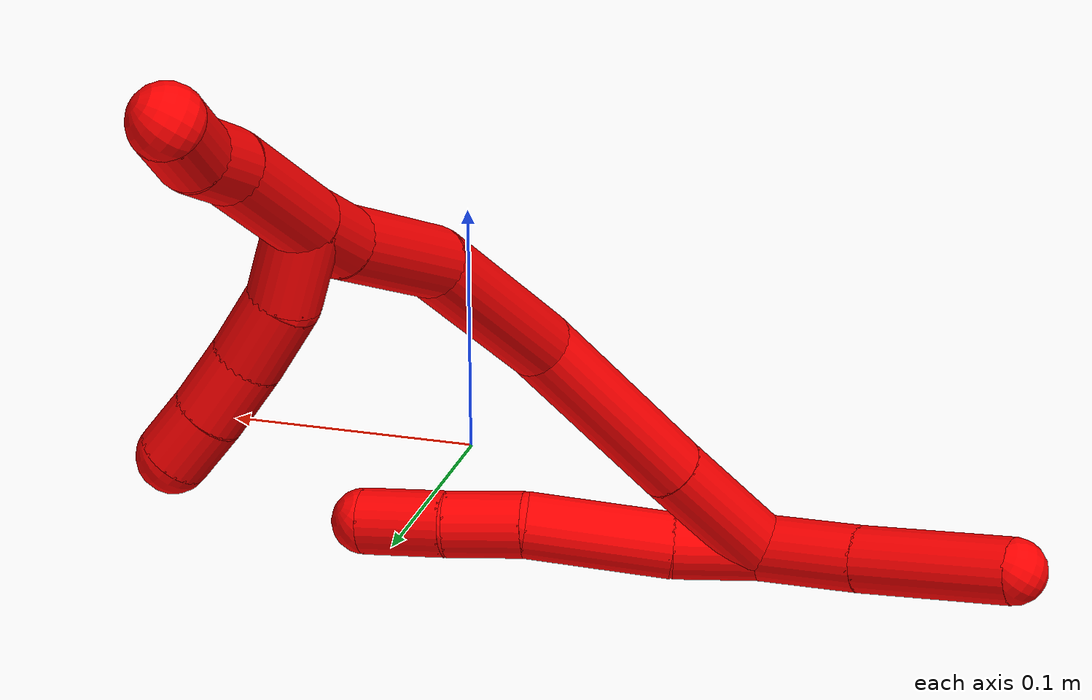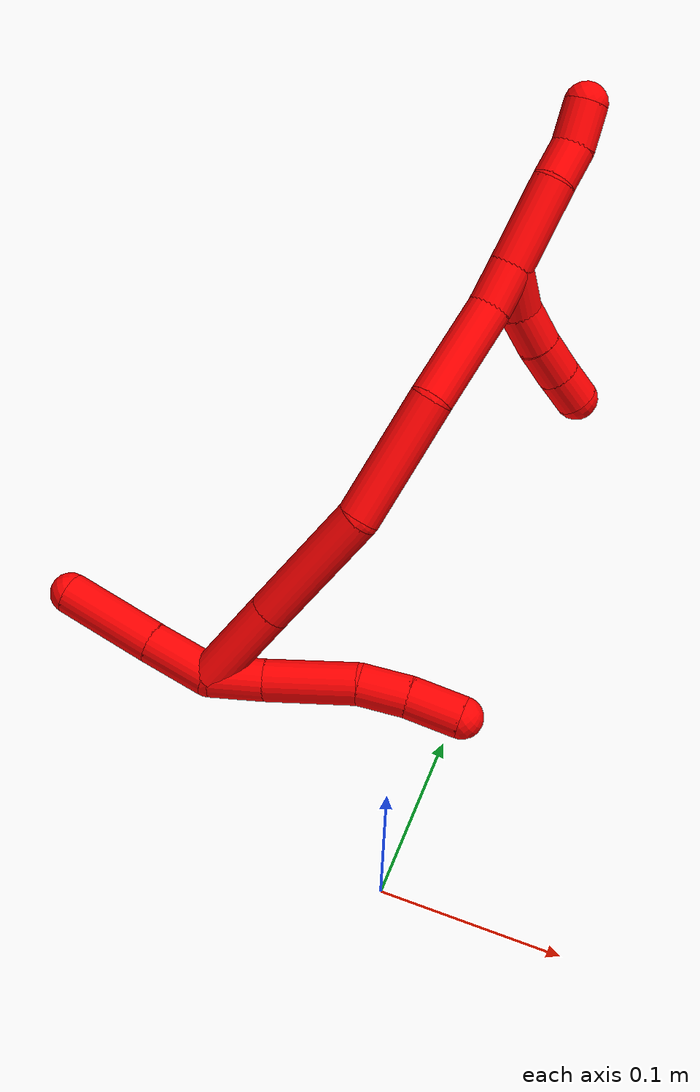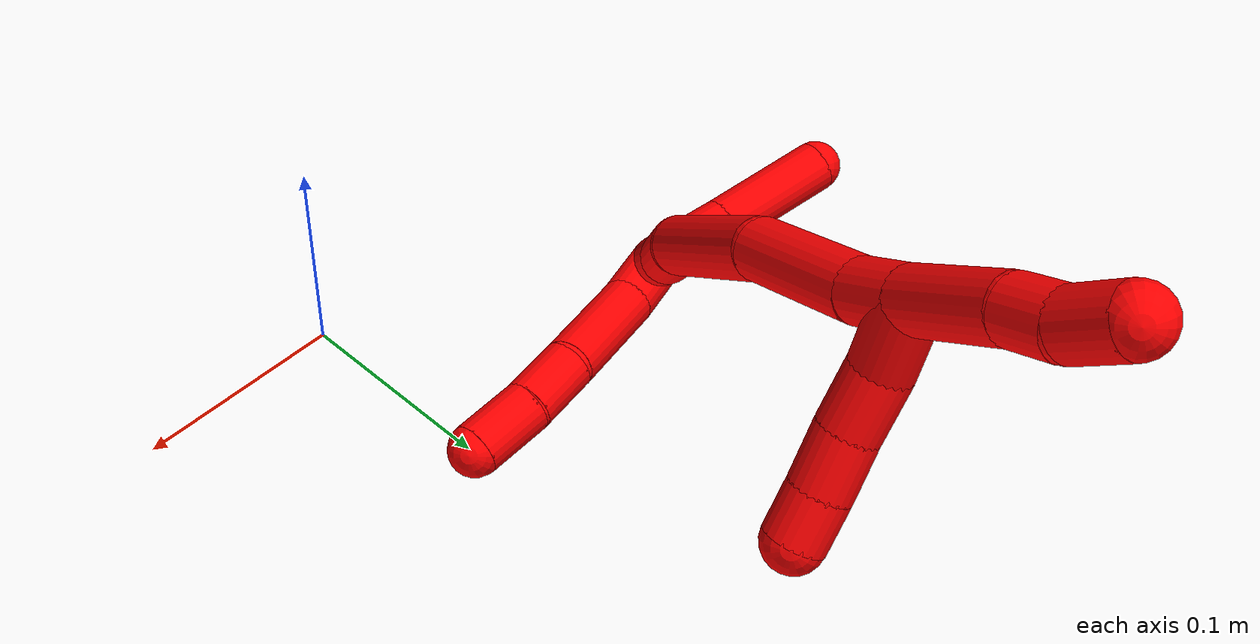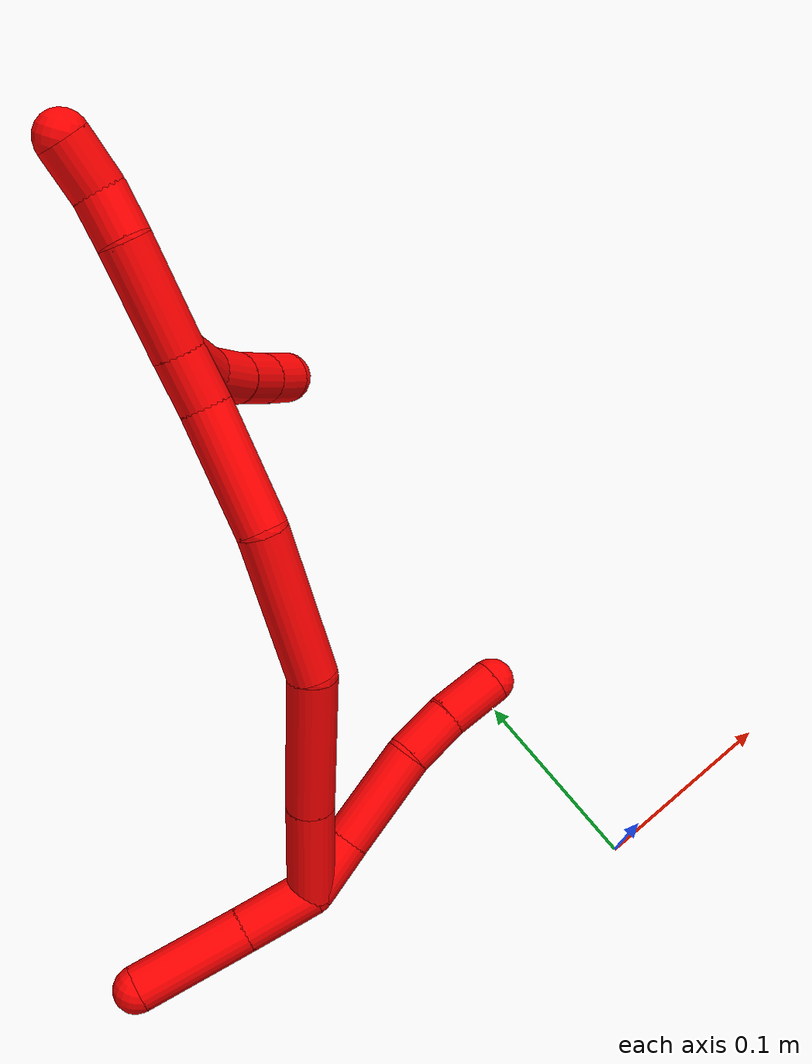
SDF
<sdf version="1.7">
 <world name="default">
  <model name="2">
   <static>0</static>
   <link name="2">
    <collision name="collision-cylinder-e_1_2_8">
     <pose>0.004877 0.008469 0.01305 -0.575646 0.30378 -0.090568</pose>
     <geometry><cylinder><radius>0.0125</radius><length>0.032607</length></cylinder></geometry>
     <surface>
      <friction><ode><mu>1.16</mu><mu2>1.16</mu2><slip1>0</slip1><slip2>0</slip2></ode></friction>
      <contact><ode><kp>1e+06</kp><kd>1</kd><max_vel>0</max_vel><min_depth>0.001</min_depth></ode></contact>
     </surface>
    </collision>
    <visual name="visual-cylinder-e_1_2_8">
     <pose>0.004877 0.008469 0.01305 -0.575646 0.30378 -0.090568</pose>
     <geometry><cylinder><radius>0.0125</radius><length>0.032607</length></cylinder></geometry>
     <material><ambient>1 0 0 1</ambient></material>
    </visual>
    <collision name="collision-cylinder-e_2_8_9">
     <pose>0.018644 0.028349 0.049698 -0.450404 0.326997 -0.07555</pose>
     <geometry><cylinder><radius>0.0125</radius><length>0.055357</length></cylinder></geometry>
     <surface>
      <friction><ode><mu>1.16</mu><mu2>1.16</mu2><slip1>0</slip1><slip2>0</slip2></ode></friction>
      <contact><ode><kp>1e+06</kp><kd>1</kd><max_vel>0</max_vel><min_depth>0.001</min_depth></ode></contact>
     </surface>
    </collision>
    <visual name="visual-cylinder-e_2_8_9">
     <pose>0.018644 0.028349 0.049698 -0.450404 0.326997 -0.07555</pose>
     <geometry><cylinder><radius>0.0125</radius><length>0.055357</length></cylinder></geometry>
     <material><ambient>1 0 0 1</ambient></material>
    </visual>
    <collision name="collision-cylinder-e_3_9_10">
     <pose>0.034131 0.047883 0.083806 -0.658023 0.460907 -0.159868</pose>
     <geometry><cylinder><radius>0.0125</radius><length>0.029663</length></cylinder></geometry>
     <surface>
      <friction><ode><mu>1.16</mu><mu2>1.16</mu2><slip1>0</slip1><slip2>0</slip2></ode></friction>
      <contact><ode><kp>1e+06</kp><kd>1</kd><max_vel>0</max_vel><min_depth>0.001</min_depth></ode></contact>
     </surface>
    </collision>
    <visual name="visual-cylinder-e_3_9_10">
     <pose>0.034131 0.047883 0.083806 -0.658023 0.460907 -0.159868</pose>
     <geometry><cylinder><radius>0.0125</radius><length>0.029663</length></cylinder></geometry>
     <material><ambient>1 0 0 1</ambient></material>
    </visual>
    <collision name="collision-cylinder-e_4_10_6">
     <pose>0.049634 0.064508 0.104823 -0.680216 0.582666 -0.211428</pose>
     <geometry><cylinder><radius>0.0125</radius><length>0.032372</length></cylinder></geometry>
     <surface>
      <friction><ode><mu>1.16</mu><mu2>1.16</mu2><slip1>0</slip1><slip2>0</slip2></ode></friction>
      <contact><ode><kp>1e+06</kp><kd>1</kd><max_vel>0</max_vel><min_depth>0.001</min_depth></ode></contact>
     </surface>
    </collision>
    <visual name="visual-cylinder-e_4_10_6">
     <pose>0.049634 0.064508 0.104823 -0.680216 0.582666 -0.211428</pose>
     <geometry><cylinder><radius>0.0125</radius><length>0.032372</length></cylinder></geometry>
     <material><ambient>1 0 0 1</ambient></material>
    </visual>
    <collision name="collision-cylinder-e_1_2_11">
     <pose>-0.013611 -0.009157 -0.011388 2.46438 -0.749938 -1.68177</pose>
     <geometry><cylinder><radius>0.0125</radius><length>0.03994</length></cylinder></geometry>
     <surface>
      <friction><ode><mu>1.16</mu><mu2>1.16</mu2><slip1>0</slip1><slip2>0</slip2></ode></friction>
      <contact><ode><kp>1e+06</kp><kd>1</kd><max_vel>0</max_vel><min_depth>0.001</min_depth></ode></contact>
     </surface>
    </collision>
    <visual name="visual-cylinder-e_1_2_11">
     <pose>-0.013611 -0.009157 -0.011388 2.46438 -0.749938 -1.68177</pose>
     <geometry><cylinder><radius>0.0125</radius><length>0.03994</length></cylinder></geometry>
     <material><ambient>1 0 0 1</ambient></material>
    </visual>
    <collision name="collision-cylinder-e_2_11_5">
     <pose>-0.047734 -0.032964 -0.039099 2.41012 -0.751889 -1.60102</pose>
     <geometry><cylinder><radius>0.0125</radius><length>0.06006</length></cylinder></geometry>
     <surface>
      <friction><ode><mu>1.16</mu><mu2>1.16</mu2><slip1>0</slip1><slip2>0</slip2></ode></friction>
      <contact><ode><kp>1e+06</kp><kd>1</kd><max_vel>0</max_vel><min_depth>0.001</min_depth></ode></contact>
     </surface>
    </collision>
    <visual name="visual-cylinder-e_2_11_5">
     <pose>-0.047734 -0.032964 -0.039099 2.41012 -0.751889 -1.60102</pose>
     <geometry><cylinder><radius>0.0125</radius><length>0.06006</length></cylinder></geometry>
     <material><ambient>1 0 0 1</ambient></material>
    </visual>
    <collision name="collision-cylinder-e_1_2_12">
     <pose>-0.005544 -0.005578 0.027389 0.200919 -0.195813 -0.0198</pose>
     <geometry><cylinder><radius>0.0125</radius><length>0.056991</length></cylinder></geometry>
     <surface>
      <friction><ode><mu>1.16</mu><mu2>1.16</mu2><slip1>0</slip1><slip2>0</slip2></ode></friction>
      <contact><ode><kp>1e+06</kp><kd>1</kd><max_vel>0</max_vel><min_depth>0.001</min_depth></ode></contact>
     </surface>
    </collision>
    <visual name="visual-cylinder-e_1_2_12">
     <pose>-0.005544 -0.005578 0.027389 0.200919 -0.195813 -0.0198</pose>
     <geometry><cylinder><radius>0.0125</radius><length>0.056991</length></cylinder></geometry>
     <material><ambient>1 0 0 1</ambient></material>
    </visual>
    <collision name="collision-cylinder-e_2_12_13">
     <pose>-0.01786 -0.019736 0.093069 0.220415 -0.170883 -0.018955</pose>
     <geometry><cylinder><radius>0.0125</radius><length>0.079641</length></cylinder></geometry>
     <surface>
      <friction><ode><mu>1.16</mu><mu2>1.16</mu2><slip1>0</slip1><slip2>0</slip2></ode></friction>
      <contact><ode><kp>1e+06</kp><kd>1</kd><max_vel>0</max_vel><min_depth>0.001</min_depth></ode></contact>
     </surface>
    </collision>
    <visual name="visual-cylinder-e_2_12_13">
     <pose>-0.01786 -0.019736 0.093069 0.220415 -0.170883 -0.018955</pose>
     <geometry><cylinder><radius>0.0125</radius><length>0.079641</length></cylinder></geometry>
     <material><ambient>1 0 0 1</ambient></material>
    </visual>
    <collision name="collision-cylinder-e_3_13_14">
     <pose>-0.043353 -0.034004 0.164353 0.17076 -0.509861 -0.044601</pose>
     <geometry><cylinder><radius>0.0125</radius><length>0.076716</length></cylinder></geometry>
     <surface>
      <friction><ode><mu>1.16</mu><mu2>1.16</mu2><slip1>0</slip1><slip2>0</slip2></ode></friction>
      <contact><ode><kp>1e+06</kp><kd>1</kd><max_vel>0</max_vel><min_depth>0.001</min_depth></ode></contact>
     </surface>
    </collision>
    <visual name="visual-cylinder-e_3_13_14">
     <pose>-0.043353 -0.034004 0.164353 0.17076 -0.509861 -0.044601</pose>
     <geometry><cylinder><radius>0.0125</radius><length>0.076716</length></cylinder></geometry>
     <material><ambient>1 0 0 1</ambient></material>
    </visual>
    <collision name="collision-cylinder-e_4_14_15">
     <pose>-0.08129 -0.037626 0.22058 -0.088752 -0.689086 0.031867</pose>
     <geometry><cylinder><radius>0.0125</radius><length>0.060445</length></cylinder></geometry>
     <surface>
      <friction><ode><mu>1.16</mu><mu2>1.16</mu2><slip1>0</slip1><slip2>0</slip2></ode></friction>
      <contact><ode><kp>1e+06</kp><kd>1</kd><max_vel>0</max_vel><min_depth>0.001</min_depth></ode></contact>
     </surface>
    </collision>
    <visual name="visual-cylinder-e_4_14_15">
     <pose>-0.08129 -0.037626 0.22058 -0.088752 -0.689086 0.031867</pose>
     <geometry><cylinder><radius>0.0125</radius><length>0.060445</length></cylinder></geometry>
     <material><ambient>1 0 0 1</ambient></material>
    </visual>
    <collision name="collision-cylinder-e_5_15_1">
     <pose>-0.108738 -0.036558 0.25396 0.098236 -0.679277 -0.034734</pose>
     <geometry><cylinder><radius>0.0125</radius><length>0.026206</length></cylinder></geometry>
     <surface>
      <friction><ode><mu>1.16</mu><mu2>1.16</mu2><slip1>0</slip1><slip2>0</slip2></ode></friction>
      <contact><ode><kp>1e+06</kp><kd>1</kd><max_vel>0</max_vel><min_depth>0.001</min_depth></ode></contact>
     </surface>
    </collision>
    <visual name="visual-cylinder-e_5_15_1">
     <pose>-0.108738 -0.036558 0.25396 0.098236 -0.679277 -0.034734</pose>
     <geometry><cylinder><radius>0.0125</radius><length>0.026206</length></cylinder></geometry>
     <material><ambient>1 0 0 1</ambient></material>
    </visual>
    <collision name="collision-cylinder-e_1_1_16">
     <pose>-0.132446 -0.041184 0.284924 0.172437 -0.632102 -0.056514</pose>
     <geometry><cylinder><radius>0.0125</radius><length>0.052386</length></cylinder></geometry>
     <surface>
      <friction><ode><mu>1.16</mu><mu2>1.16</mu2><slip1>0</slip1><slip2>0</slip2></ode></friction>
      <contact><ode><kp>1e+06</kp><kd>1</kd><max_vel>0</max_vel><min_depth>0.001</min_depth></ode></contact>
     </surface>
    </collision>
    <visual name="visual-cylinder-e_1_1_16">
     <pose>-0.132446 -0.041184 0.284924 0.172437 -0.632102 -0.056514</pose>
     <geometry><cylinder><radius>0.0125</radius><length>0.052386</length></cylinder></geometry>
     <material><ambient>1 0 0 1</ambient></material>
    </visual>
    <collision name="collision-cylinder-e_2_16_17">
     <pose>-0.155297 -0.044704 0.314084 -0.01277 -0.723981 0.004836</pose>
     <geometry><cylinder><radius>0.0125</radius><length>0.022269</length></cylinder></geometry>
     <surface>
      <friction><ode><mu>1.16</mu><mu2>1.16</mu2><slip1>0</slip1><slip2>0</slip2></ode></friction>
      <contact><ode><kp>1e+06</kp><kd>1</kd><max_vel>0</max_vel><min_depth>0.001</min_depth></ode></contact>
     </surface>
    </collision>
    <visual name="visual-cylinder-e_2_16_17">
     <pose>-0.155297 -0.044704 0.314084 -0.01277 -0.723981 0.004836</pose>
     <geometry><cylinder><radius>0.0125</radius><length>0.022269</length></cylinder></geometry>
     <material><ambient>1 0 0 1</ambient></material>
    </visual>
    <collision name="collision-cylinder-e_3_17_4">
     <pose>-0.171217 -0.047839 0.331204 0.353718 -0.739978 -0.138417</pose>
     <geometry><cylinder><radius>0.0125</radius><length>0.025345</length></cylinder></geometry>
     <surface>
      <friction><ode><mu>1.16</mu><mu2>1.16</mu2><slip1>0</slip1><slip2>0</slip2></ode></friction>
      <contact><ode><kp>1e+06</kp><kd>1</kd><max_vel>0</max_vel><min_depth>0.001</min_depth></ode></contact>
     </surface>
    </collision>
    <visual name="visual-cylinder-e_3_17_4">
     <pose>-0.171217 -0.047839 0.331204 0.353718 -0.739978 -0.138417</pose>
     <geometry><cylinder><radius>0.0125</radius><length>0.025345</length></cylinder></geometry>
     <material><ambient>1 0 0 1</ambient></material>
    </visual>
    <collision name="collision-cylinder-e_1_1_18">
     <pose>-0.113666 -0.024369 0.258642 -1.96348 0.227396 -0.33852</pose>
     <geometry><cylinder><radius>0.0125</radius><length>0.029307</length></cylinder></geometry>
     <surface>
      <friction><ode><mu>1.16</mu><mu2>1.16</mu2><slip1>0</slip1><slip2>0</slip2></ode></friction>
      <contact><ode><kp>1e+06</kp><kd>1</kd><max_vel>0</max_vel><min_depth>0.001</min_depth></ode></contact>
     </surface>
    </collision>
    <visual name="visual-cylinder-e_1_1_18">
     <pose>-0.113666 -0.024369 0.258642 -1.96348 0.227396 -0.33852</pose>
     <geometry><cylinder><radius>0.0125</radius><length>0.029307</length></cylinder></geometry>
     <material><ambient>1 0 0 1</ambient></material>
    </visual>
    <collision name="collision-cylinder-e_2_18_19">
     <pose>-0.105879 0.000717 0.251431 -1.7167 0.356922 -0.411731</pose>
     <geometry><cylinder><radius>0.0125</radius><length>0.025665</length></cylinder></geometry>
     <surface>
      <friction><ode><mu>1.16</mu><mu2>1.16</mu2><slip1>0</slip1><slip2>0</slip2></ode></friction>
      <contact><ode><kp>1e+06</kp><kd>1</kd><max_vel>0</max_vel><min_depth>0.001</min_depth></ode></contact>
     </surface>
    </collision>
    <visual name="visual-cylinder-e_2_18_19">
     <pose>-0.105879 0.000717 0.251431 -1.7167 0.356922 -0.411731</pose>
     <geometry><cylinder><radius>0.0125</radius><length>0.025665</length></cylinder></geometry>
     <material><ambient>1 0 0 1</ambient></material>
    </visual>
    <collision name="collision-cylinder-e_3_19_20">
     <pose>-0.097675 0.024092 0.248924 -1.63681 0.312849 -0.333832</pose>
     <geometry><cylinder><radius>0.0125</radius><length>0.024181</length></cylinder></geometry>
     <surface>
      <friction><ode><mu>1.16</mu><mu2>1.16</mu2><slip1>0</slip1><slip2>0</slip2></ode></friction>
      <contact><ode><kp>1e+06</kp><kd>1</kd><max_vel>0</max_vel><min_depth>0.001</min_depth></ode></contact>
     </surface>
    </collision>
    <visual name="visual-cylinder-e_3_19_20">
     <pose>-0.097675 0.024092 0.248924 -1.63681 0.312849 -0.333832</pose>
     <geometry><cylinder><radius>0.0125</radius><length>0.024181</length></cylinder></geometry>
     <material><ambient>1 0 0 1</ambient></material>
    </visual>
    <collision name="collision-cylinder-e_4_20_3">
     <pose>-0.090343 0.045347 0.248007 -1.58705 0.3537 -0.359372</pose>
     <geometry><cylinder><radius>0.0125</radius><length>0.020847</length></cylinder></geometry>
     <surface>
      <friction><ode><mu>1.16</mu><mu2>1.16</mu2><slip1>0</slip1><slip2>0</slip2></ode></friction>
      <contact><ode><kp>1e+06</kp><kd>1</kd><max_vel>0</max_vel><min_depth>0.001</min_depth></ode></contact>
     </surface>
    </collision>
    <visual name="visual-cylinder-e_4_20_3">
     <pose>-0.090343 0.045347 0.248007 -1.58705 0.3537 -0.359372</pose>
     <geometry><cylinder><radius>0.0125</radius><length>0.020847</length></cylinder></geometry>
     <material><ambient>1 0 0 1</ambient></material>
    </visual>
    <collision name="collision-sphere-3">
     <pose>-0.086733 0.055124 0.247848 0 -0 0</pose>
     <geometry><sphere><radius>0.0125</radius></sphere></geometry>
     <surface>
      <friction><ode><mu>1.16</mu><mu2>1.16</mu2><slip1>0</slip1><slip2>0</slip2></ode></friction>
      <contact><ode><kp>1e+06</kp><kd>1</kd><max_vel>0</max_vel><min_depth>0.001</min_depth></ode></contact>
     </surface>
    </collision>
    <visual name="visual-sphere-3">
     <pose>-0.086733 0.055124 0.247848 0 -0 0</pose>
     <geometry><sphere><radius>0.0125</radius></sphere></geometry>
     <material><ambient>1 0 0 1</ambient></material>
    </visual>
    <collision name="collision-sphere-20">
     <pose>-0.093953 0.03557 0.248165 0 -0 0</pose>
     <geometry><sphere><radius>0.0125</radius></sphere></geometry>
     <surface>
      <friction><ode><mu>1.16</mu><mu2>1.16</mu2><slip1>0</slip1><slip2>0</slip2></ode></friction>
      <contact><ode><kp>1e+06</kp><kd>1</kd><max_vel>0</max_vel><min_depth>0.001</min_depth></ode></contact>
     </surface>
    </collision>
    <visual name="visual-sphere-20">
     <pose>-0.093953 0.03557 0.248165 0 -0 0</pose>
     <geometry><sphere><radius>0.0125</radius></sphere></geometry>
     <material><ambient>1 0 0 1</ambient></material>
    </visual>
    <collision name="collision-sphere-19">
     <pose>-0.101396 0.012613 0.249683 0 -0 0</pose>
     <geometry><sphere><radius>0.0125</radius></sphere></geometry>
     <surface>
      <friction><ode><mu>1.16</mu><mu2>1.16</mu2><slip1>0</slip1><slip2>0</slip2></ode></friction>
      <contact><ode><kp>1e+06</kp><kd>1</kd><max_vel>0</max_vel><min_depth>0.001</min_depth></ode></contact>
     </surface>
    </collision>
    <visual name="visual-sphere-19">
     <pose>-0.101396 0.012613 0.249683 0 -0 0</pose>
     <geometry><sphere><radius>0.0125</radius></sphere></geometry>
     <material><ambient>1 0 0 1</ambient></material>
    </visual>
    <collision name="collision-sphere-11">
     <pose>-0.027223 -0.018313 -0.022776 0 -0 0</pose>
     <geometry><sphere><radius>0.0125</radius></sphere></geometry>
     <surface>
      <friction><ode><mu>1.16</mu><mu2>1.16</mu2><slip1>0</slip1><slip2>0</slip2></ode></friction>
      <contact><ode><kp>1e+06</kp><kd>1</kd><max_vel>0</max_vel><min_depth>0.001</min_depth></ode></contact>
     </surface>
    </collision>
    <visual name="visual-sphere-11">
     <pose>-0.027223 -0.018313 -0.022776 0 -0 0</pose>
     <geometry><sphere><radius>0.0125</radius></sphere></geometry>
     <material><ambient>1 0 0 1</ambient></material>
    </visual>
    <collision name="collision-sphere-6">
     <pose>0.058541 0.073009 0.115331 0 -0 0</pose>
     <geometry><sphere><radius>0.0125</radius></sphere></geometry>
     <surface>
      <friction><ode><mu>1.16</mu><mu2>1.16</mu2><slip1>0</slip1><slip2>0</slip2></ode></friction>
      <contact><ode><kp>1e+06</kp><kd>1</kd><max_vel>0</max_vel><min_depth>0.001</min_depth></ode></contact>
     </surface>
    </collision>
    <visual name="visual-sphere-6">
     <pose>0.058541 0.073009 0.115331 0 -0 0</pose>
     <geometry><sphere><radius>0.0125</radius></sphere></geometry>
     <material><ambient>1 0 0 1</ambient></material>
    </visual>
    <collision name="collision-sphere-10">
     <pose>0.040728 0.056007 0.094316 0 -0 0</pose>
     <geometry><sphere><radius>0.0125</radius></sphere></geometry>
     <surface>
      <friction><ode><mu>1.16</mu><mu2>1.16</mu2><slip1>0</slip1><slip2>0</slip2></ode></friction>
      <contact><ode><kp>1e+06</kp><kd>1</kd><max_vel>0</max_vel><min_depth>0.001</min_depth></ode></contact>
     </surface>
    </collision>
    <visual name="visual-sphere-10">
     <pose>0.040728 0.056007 0.094316 0 -0 0</pose>
     <geometry><sphere><radius>0.0125</radius></sphere></geometry>
     <material><ambient>1 0 0 1</ambient></material>
    </visual>
    <collision name="collision-sphere-9">
     <pose>0.027534 0.039759 0.073295 0 -0 0</pose>
     <geometry><sphere><radius>0.0125</radius></sphere></geometry>
     <surface>
      <friction><ode><mu>1.16</mu><mu2>1.16</mu2><slip1>0</slip1><slip2>0</slip2></ode></friction>
      <contact><ode><kp>1e+06</kp><kd>1</kd><max_vel>0</max_vel><min_depth>0.001</min_depth></ode></contact>
     </surface>
    </collision>
    <visual name="visual-sphere-9">
     <pose>0.027534 0.039759 0.073295 0 -0 0</pose>
     <geometry><sphere><radius>0.0125</radius></sphere></geometry>
     <material><ambient>1 0 0 1</ambient></material>
    </visual>
    <collision name="collision-sphere-2">
     <geometry><sphere><radius>0.0125</radius></sphere></geometry>
     <surface>
      <friction><ode><mu>1.16</mu><mu2>1.16</mu2><slip1>0</slip1><slip2>0</slip2></ode></friction>
      <contact><ode><kp>1e+06</kp><kd>1</kd><max_vel>0</max_vel><min_depth>0.001</min_depth></ode></contact>
     </surface>
    </collision>
    <visual name="visual-sphere-2">
     <geometry><sphere><radius>0.0125</radius></sphere></geometry>
     <material><ambient>1 0 0 1</ambient></material>
    </visual>
    <collision name="collision-sphere-8">
     <pose>0.009754 0.016938 0.0261 0 -0 0</pose>
     <geometry><sphere><radius>0.0125</radius></sphere></geometry>
     <surface>
      <friction><ode><mu>1.16</mu><mu2>1.16</mu2><slip1>0</slip1><slip2>0</slip2></ode></friction>
      <contact><ode><kp>1e+06</kp><kd>1</kd><max_vel>0</max_vel><min_depth>0.001</min_depth></ode></contact>
     </surface>
    </collision>
    <visual name="visual-sphere-8">
     <pose>0.009754 0.016938 0.0261 0 -0 0</pose>
     <geometry><sphere><radius>0.0125</radius></sphere></geometry>
     <material><ambient>1 0 0 1</ambient></material>
    </visual>
    <collision name="collision-sphere-5">
     <pose>-0.068245 -0.047615 -0.055422 0 -0 0</pose>
     <geometry><sphere><radius>0.0125</radius></sphere></geometry>
     <surface>
      <friction><ode><mu>1.16</mu><mu2>1.16</mu2><slip1>0</slip1><slip2>0</slip2></ode></friction>
      <contact><ode><kp>1e+06</kp><kd>1</kd><max_vel>0</max_vel><min_depth>0.001</min_depth></ode></contact>
     </surface>
    </collision>
    <visual name="visual-sphere-5">
     <pose>-0.068245 -0.047615 -0.055422 0 -0 0</pose>
     <geometry><sphere><radius>0.0125</radius></sphere></geometry>
     <material><ambient>1 0 0 1</ambient></material>
    </visual>
    <collision name="collision-sphere-12">
     <pose>-0.011088 -0.011156 0.054778 0 -0 0</pose>
     <geometry><sphere><radius>0.0125</radius></sphere></geometry>
     <surface>
      <friction><ode><mu>1.16</mu><mu2>1.16</mu2><slip1>0</slip1><slip2>0</slip2></ode></friction>
      <contact><ode><kp>1e+06</kp><kd>1</kd><max_vel>0</max_vel><min_depth>0.001</min_depth></ode></contact>
     </surface>
    </collision>
    <visual name="visual-sphere-12">
     <pose>-0.011088 -0.011156 0.054778 0 -0 0</pose>
     <geometry><sphere><radius>0.0125</radius></sphere></geometry>
     <material><ambient>1 0 0 1</ambient></material>
    </visual>
    <collision name="collision-sphere-13">
     <pose>-0.024632 -0.028315 0.13136 0 -0 0</pose>
     <geometry><sphere><radius>0.0125</radius></sphere></geometry>
     <surface>
      <friction><ode><mu>1.16</mu><mu2>1.16</mu2><slip1>0</slip1><slip2>0</slip2></ode></friction>
      <contact><ode><kp>1e+06</kp><kd>1</kd><max_vel>0</max_vel><min_depth>0.001</min_depth></ode></contact>
     </surface>
    </collision>
    <visual name="visual-sphere-13">
     <pose>-0.024632 -0.028315 0.13136 0 -0 0</pose>
     <geometry><sphere><radius>0.0125</radius></sphere></geometry>
     <material><ambient>1 0 0 1</ambient></material>
    </visual>
    <collision name="collision-sphere-14">
     <pose>-0.062073 -0.039694 0.197345 0 -0 0</pose>
     <geometry><sphere><radius>0.0125</radius></sphere></geometry>
     <surface>
      <friction><ode><mu>1.16</mu><mu2>1.16</mu2><slip1>0</slip1><slip2>0</slip2></ode></friction>
      <contact><ode><kp>1e+06</kp><kd>1</kd><max_vel>0</max_vel><min_depth>0.001</min_depth></ode></contact>
     </surface>
    </collision>
    <visual name="visual-sphere-14">
     <pose>-0.062073 -0.039694 0.197345 0 -0 0</pose>
     <geometry><sphere><radius>0.0125</radius></sphere></geometry>
     <material><ambient>1 0 0 1</ambient></material>
    </visual>
    <collision name="collision-sphere-15">
     <pose>-0.100506 -0.035558 0.243815 0 -0 0</pose>
     <geometry><sphere><radius>0.0125</radius></sphere></geometry>
     <surface>
      <friction><ode><mu>1.16</mu><mu2>1.16</mu2><slip1>0</slip1><slip2>0</slip2></ode></friction>
      <contact><ode><kp>1e+06</kp><kd>1</kd><max_vel>0</max_vel><min_depth>0.001</min_depth></ode></contact>
     </surface>
    </collision>
    <visual name="visual-sphere-15">
     <pose>-0.100506 -0.035558 0.243815 0 -0 0</pose>
     <geometry><sphere><radius>0.0125</radius></sphere></geometry>
     <material><ambient>1 0 0 1</ambient></material>
    </visual>
    <collision name="collision-sphere-1">
     <pose>-0.11697 -0.037558 0.264106 0 -0 0</pose>
     <geometry><sphere><radius>0.0125</radius></sphere></geometry>
     <surface>
      <friction><ode><mu>1.16</mu><mu2>1.16</mu2><slip1>0</slip1><slip2>0</slip2></ode></friction>
      <contact><ode><kp>1e+06</kp><kd>1</kd><max_vel>0</max_vel><min_depth>0.001</min_depth></ode></contact>
     </surface>
    </collision>
    <visual name="visual-sphere-1">
     <pose>-0.11697 -0.037558 0.264106 0 -0 0</pose>
     <geometry><sphere><radius>0.0125</radius></sphere></geometry>
     <material><ambient>1 0 0 1</ambient></material>
    </visual>
    <collision name="collision-sphere-18">
     <pose>-0.110363 -0.011179 0.253179 0 -0 0</pose>
     <geometry><sphere><radius>0.0125</radius></sphere></geometry>
     <surface>
      <friction><ode><mu>1.16</mu><mu2>1.16</mu2><slip1>0</slip1><slip2>0</slip2></ode></friction>
      <contact><ode><kp>1e+06</kp><kd>1</kd><max_vel>0</max_vel><min_depth>0.001</min_depth></ode></contact>
     </surface>
    </collision>
    <visual name="visual-sphere-18">
     <pose>-0.110363 -0.011179 0.253179 0 -0 0</pose>
     <geometry><sphere><radius>0.0125</radius></sphere></geometry>
     <material><ambient>1 0 0 1</ambient></material>
    </visual>
    <collision name="collision-sphere-16">
     <pose>-0.147922 -0.04481 0.305743 0 -0 0</pose>
     <geometry><sphere><radius>0.0125</radius></sphere></geometry>
     <surface>
      <friction><ode><mu>1.16</mu><mu2>1.16</mu2><slip1>0</slip1><slip2>0</slip2></ode></friction>
      <contact><ode><kp>1e+06</kp><kd>1</kd><max_vel>0</max_vel><min_depth>0.001</min_depth></ode></contact>
     </surface>
    </collision>
    <visual name="visual-sphere-16">
     <pose>-0.147922 -0.04481 0.305743 0 -0 0</pose>
     <geometry><sphere><radius>0.0125</radius></sphere></geometry>
     <material><ambient>1 0 0 1</ambient></material>
    </visual>
    <collision name="collision-sphere-17">
     <pose>-0.162672 -0.044597 0.322425 0 -0 0</pose>
     <geometry><sphere><radius>0.0125</radius></sphere></geometry>
     <surface>
      <friction><ode><mu>1.16</mu><mu2>1.16</mu2><slip1>0</slip1><slip2>0</slip2></ode></friction>
      <contact><ode><kp>1e+06</kp><kd>1</kd><max_vel>0</max_vel><min_depth>0.001</min_depth></ode></contact>
     </surface>
    </collision>
    <visual name="visual-sphere-17">
     <pose>-0.162672 -0.044597 0.322425 0 -0 0</pose>
     <geometry><sphere><radius>0.0125</radius></sphere></geometry>
     <material><ambient>1 0 0 1</ambient></material>
    </visual>
    <collision name="collision-sphere-4">
     <pose>-0.179761 -0.05108 0.339983 0 -0 0</pose>
     <geometry><sphere><radius>0.0125</radius></sphere></geometry>
     <surface>
      <friction><ode><mu>1.16</mu><mu2>1.16</mu2><slip1>0</slip1><slip2>0</slip2></ode></friction>
      <contact><ode><kp>1e+06</kp><kd>1</kd><max_vel>0</max_vel><min_depth>0.001</min_depth></ode></contact>
     </surface>
    </collision>
    <visual name="visual-sphere-4">
     <pose>-0.179761 -0.05108 0.339983 0 -0 0</pose>
     <geometry><sphere><radius>0.0125</radius></sphere></geometry>
     <material><ambient>1 0 0 1</ambient></material>
    </visual>
    <inertial>
     <pose>-0.049943 -0.011007 0.137813 0 -0 0</pose>
     <mass>0.75</mass>
     <inertia>
      <ixx>0.000121</ixx>
      <ixy>0</ixy>
      <ixz>0</ixz>
      <iyy>0.000156</iyy>
      <iyz>0</iyz>
      <izz>0.000105</izz>
     </inertia>
    </inertial>
   </link>
   <pose>-0.13964 0.08613 0.011239 -0.95647 0.051441 -0.991779</pose>
  </model>
 </world>
</sdf>
